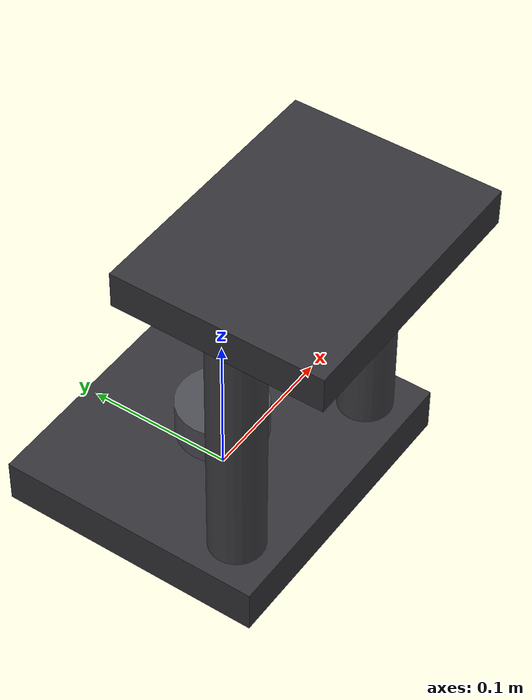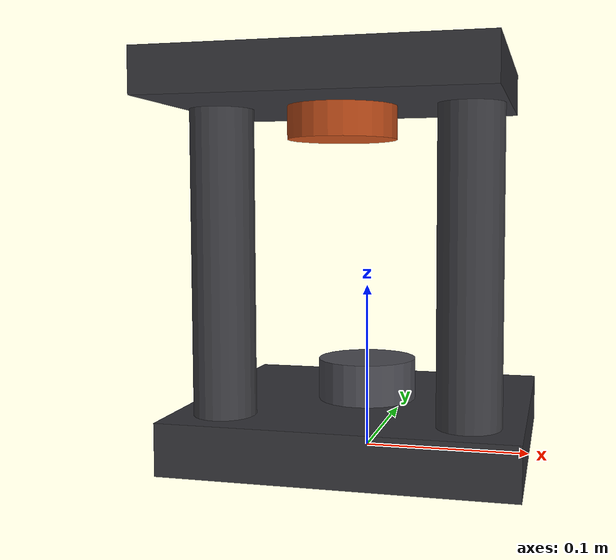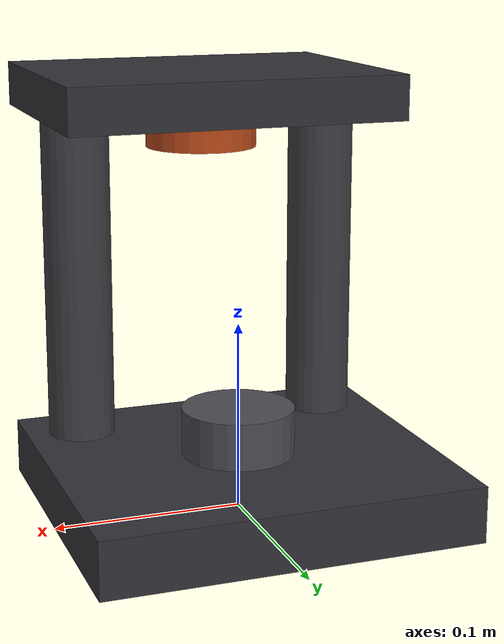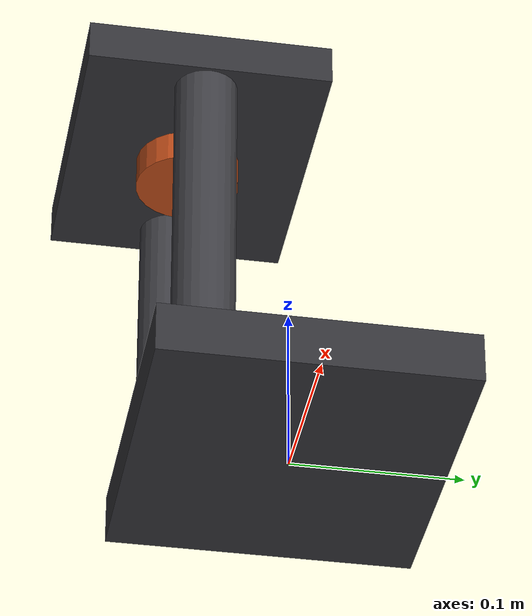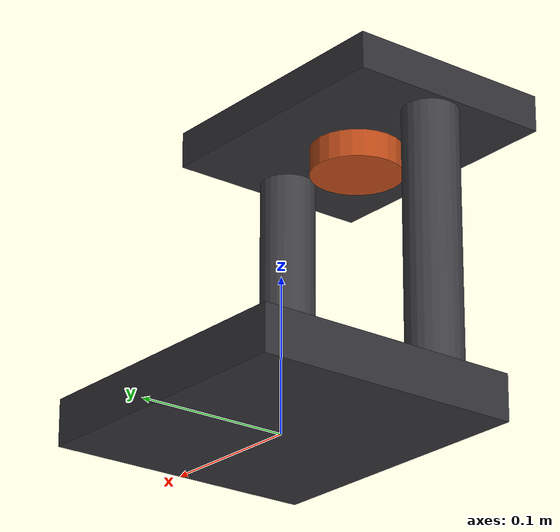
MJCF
<?xml version="1.0" encoding="utf-8"?>
<mujoco model="real_lab_stockholm_university_sps">
  <compiler angle="radian" autolimits="true"/>
  <default>
    <default class="body"><geom contype="1" conaffinity="1"/></default>
  </default>
  <worldbody>
    <body name="base">
      <geom type="box" size="0.1 0.09 0.015" pos="0 0 0.015" rgba="0.2 0.2 0.22 1" class="body"/>
      <geom type="cylinder" size="0.018 0.1" pos="-0.07 -0.06 0.115" rgba="0.25 0.25 0.27 1" class="body"/>
      <geom type="cylinder" size="0.018 0.1" pos="0.07 -0.06 0.115" rgba="0.25 0.25 0.27 1" class="body"/>
      <geom type="box" size="0.09 0.07 0.012" pos="0 -0.06 0.215" rgba="0.2 0.2 0.22 1" class="body"/>
      <geom type="cylinder" size="0.03 0.015" pos="0 0 0.04" rgba="0.3 0.3 0.33 1" class="body"/>
      <body name="upper_ram" pos="0.0 -0.06 0.2">
        <joint name="upper_ram_joint" type="slide" axis="0 0 1" range="-0.06 0" damping="1.2" frictionloss="0.5"/>
  <geom type="cylinder" size="0.03 0.015" pos="0 0 0" rgba="0.75 0.3 0.1 1" class="body"/>
      </body>
    </body>
  </worldbody>
</mujoco>
